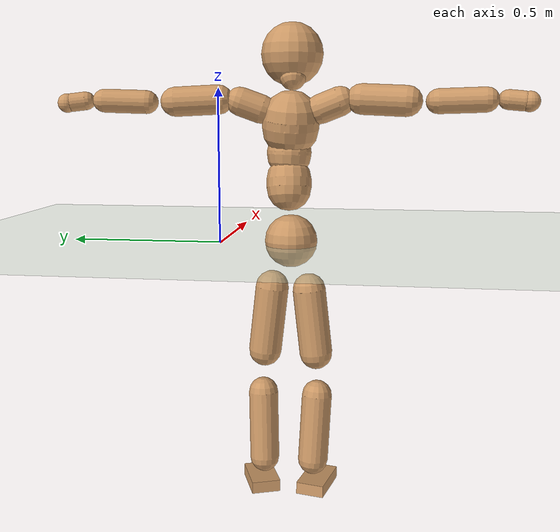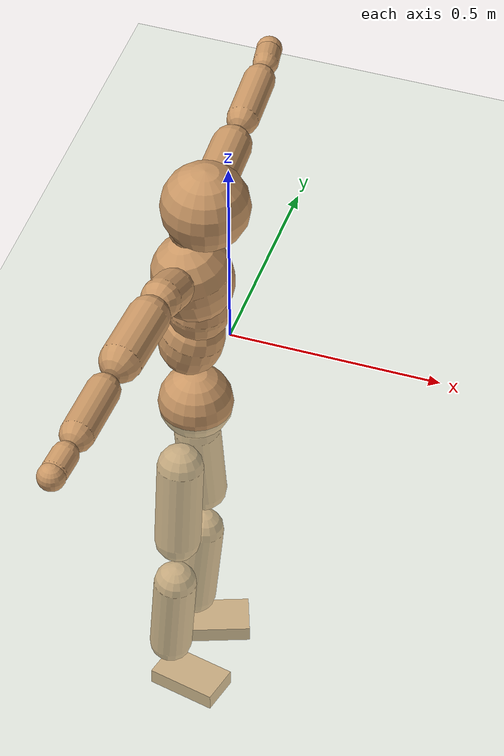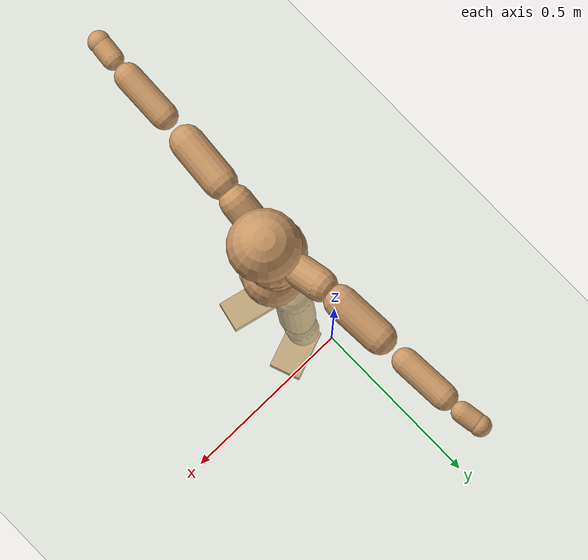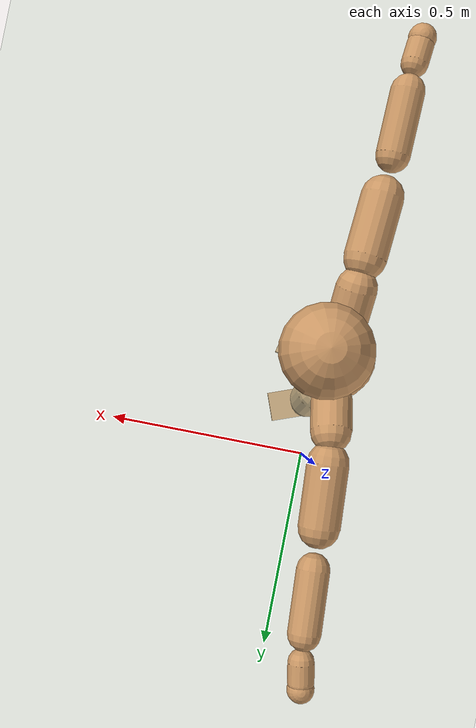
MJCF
<mujoco model="humanoid">
  <compiler coordinate="local" angle="radian"/>
  <default>
    <joint damping="0.0" armature="0.01" stiffness="0.0" limited="true"/>
    <geom conaffinity="1" condim="3" contype="7" margin="0.001" rgba="0.8 0.6 .4 1"/>
  </default>
  <asset>
    <texture type="skybox" builtin="gradient" rgb1=".4 .5 .6" rgb2="0 0 0" width="100" height="100"/>
    <texture builtin="flat" height="1278" mark="cross" markrgb="1 1 1" name="texgeom" random="0.01" rgb1="0.8 0.6 0.4" rgb2="0.8 0.6 0.4" type="cube" width="127"/>
    <texture builtin="checker" height="100" name="texplane" rgb1="0 0 0" rgb2="0.8 0.8 0.8" type="2d" width="100"/>
    <material name="MatPlane" reflectance="0.5" shininess="1" specular="1" texrepeat="60 60" texture="texplane"/>
    <material name="geom" texture="texgeom" texuniform="true"/>
  </asset>
  <worldbody>
    <light cutoff="100" diffuse="1 1 1" dir="-0 0 -1.3" directional="true" exponent="1" pos="0 0 1.3" specular=".1 .1 .1"/>
    <geom conaffinity="1" condim="3" name="floor" pos="0 0 0" rgba="0.8 0.9 0.8 1" size="100 100 .2" type="plane" material="MatPlane"/>
    <body name="Pelvis" pos="-0.0008 -0.2352 0.0116">
      <freejoint name="Pelvis"/>
      <geom type="sphere" contype="1" conaffinity="1" density="500" size="0.0857" pos="0.0000 0.0000 0.0000" name="Pelvis"/>
      <body name="L_Hip" pos="-0.0212 0.0512 -0.0784">
        <joint name="L_Hip_x" type="hinge" pos="0 0 0" axis="1 0 0" stiffness="800" damping="80" armature="0.02" range="-180.0000 180.0000"/>
        <joint name="L_Hip_y" type="hinge" pos="0 0 0" axis="0 1 0" stiffness="800" damping="80" armature="0.02" range="-180.0000 180.0000"/>
        <joint name="L_Hip_z" type="hinge" pos="0 0 0" axis="0 0 1" stiffness="800" damping="80" armature="0.02" range="-180.0000 180.0000"/>
        <geom type="capsule" contype="1" conaffinity="1" density="500" fromto="0.0016 0.0082 -0.0723 0.0064 0.0326 -0.2890" size="0.0542" name="L_Hip"/>
        <body name="L_Knee" pos="0.008 0.0408 -0.3613">
          <joint name="L_Knee_x" type="hinge" pos="0 0 0" axis="1 0 0" stiffness="800" damping="80" armature="0.02" range="-180.0000 180.0000"/>
          <joint name="L_Knee_y" type="hinge" pos="0 0 0" axis="0 1 0" stiffness="800" damping="80" armature="0.02" range="-180.0000 180.0000"/>
          <joint name="L_Knee_z" type="hinge" pos="0 0 0" axis="0 0 1" stiffness="800" damping="80" armature="0.02" range="-180.0000 180.0000"/>
          <geom type="capsule" contype="1" conaffinity="1" density="500" fromto="-0.0067 -0.0023 -0.0746 -0.0270 -0.0092 -0.2985" size="0.0489" name="L_Knee"/>
          <body name="L_Ankle" pos="-0.0337 -0.0115 -0.3732">
            <joint name="L_Ankle_x" type="hinge" pos="0 0 0" axis="1 0 0" stiffness="800" damping="80" armature="0.02" range="-180.0000 180.0000"/>
            <joint name="L_Ankle_y" type="hinge" pos="0 0 0" axis="0 1 0" stiffness="800" damping="80" armature="0.02" range="-180.0000 180.0000"/>
            <joint name="L_Ankle_z" type="hinge" pos="0 0 0" axis="0 0 1" stiffness="800" damping="80" armature="0.02" range="-180.0000 180.0000"/>
            <geom type="box" contype="1" conaffinity="1" density="500" pos="0.0546 0.0203 -0.0270" size="0.0764 0.0483 0.0196" quat="0.9842 0.0000 0.0000 0.1772" name="L_Ankle"/>
            <body name="L_Toe" pos="0.1091 0.0406 -0.054">
              <joint name="L_Toe_x" type="hinge" pos="0 0 0" axis="1 0 0" stiffness="500" damping="50" armature="0.02" range="-180.0000 180.0000"/>
              <joint name="L_Toe_y" type="hinge" pos="0 0 0" axis="0 1 0" stiffness="500" damping="50" armature="0.02" range="-180.0000 180.0000"/>
              <joint name="L_Toe_z" type="hinge" pos="0 0 0" axis="0 0 1" stiffness="500" damping="50" armature="0.02" range="-180.0000 180.0000"/>
              <geom type="box" contype="1" conaffinity="1" density="500" pos="0.0000 0.0000 0.0277" size="0.001 0.0023 0.001" quat="0.9833 0.0000 0.0000 0.1821" name="L_Toe"/>
            </body>
          </body>
        </body>
      </body>
      <body name="R_Hip" pos="-0.0176 -0.0537 -0.0866">
        <joint name="R_Hip_x" type="hinge" pos="0 0 0" axis="1 0 0" stiffness="800" damping="80" armature="0.02" range="-180.0000 180.0000"/>
        <joint name="R_Hip_y" type="hinge" pos="0 0 0" axis="0 1 0" stiffness="800" damping="80" armature="0.02" range="-180.0000 180.0000"/>
        <joint name="R_Hip_z" type="hinge" pos="0 0 0" axis="0 0 1" stiffness="800" damping="80" armature="0.02" range="-180.0000 180.0000"/>
        <geom type="capsule" contype="1" conaffinity="1" density="500" fromto="-0.0005 -0.0082 -0.0710 -0.0020 -0.0328 -0.2842" size="0.0538" name="R_Hip"/>
        <body name="R_Knee" pos="-0.0025 -0.041 -0.3552">
          <joint name="R_Knee_x" type="hinge" pos="0 0 0" axis="1 0 0" stiffness="800" damping="80" armature="0.02" range="-180.0000 180.0000"/>
          <joint name="R_Knee_y" type="hinge" pos="0 0 0" axis="0 1 0" stiffness="800" damping="80" armature="0.02" range="-180.0000 180.0000"/>
          <joint name="R_Knee_z" type="hinge" pos="0 0 0" axis="0 0 1" stiffness="800" damping="80" armature="0.02" range="-180.0000 180.0000"/>
          <geom type="capsule" contype="1" conaffinity="1" density="500" fromto="-0.0062 0.0033 -0.0735 -0.0246 0.0132 -0.2938" size="0.0497" name="R_Knee"/>
          <body name="R_Ankle" pos="-0.0308 0.0164 -0.3673">
            <joint name="R_Ankle_x" type="hinge" pos="0 0 0" axis="1 0 0" stiffness="800" damping="80" armature="0.02" range="-180.0000 180.0000"/>
            <joint name="R_Ankle_y" type="hinge" pos="0 0 0" axis="0 1 0" stiffness="800" damping="80" armature="0.02" range="-180.0000 180.0000"/>
            <joint name="R_Ankle_z" type="hinge" pos="0 0 0" axis="0 0 1" stiffness="800" damping="80" armature="0.02" range="-180.0000 180.0000"/>
            <geom type="box" contype="1" conaffinity="1" density="500" pos="0.0585 -0.0133 -0.0285" size="0.0816 0.0466 0.0201" quat="0.9938 0.0000 0.0000 -0.1111" name="R_Ankle"/>
            <body name="R_Toe" pos="0.117 -0.0265 -0.057">
              <joint name="R_Toe_x" type="hinge" pos="0 0 0" axis="1 0 0" stiffness="500" damping="50" armature="0.02" range="-180.0000 180.0000"/>
              <joint name="R_Toe_y" type="hinge" pos="0 0 0" axis="0 1 0" stiffness="500" damping="50" armature="0.02" range="-180.0000 180.0000"/>
              <joint name="R_Toe_z" type="hinge" pos="0 0 0" axis="0 0 1" stiffness="500" damping="50" armature="0.02" range="-180.0000 180.0000"/>
              <geom type="box" contype="1" conaffinity="1" density="500" pos="0.0000 0.0000 0.0304" size="0.0009 0.0023 0.0011" quat="0.9949 0.0000 0.0000 -0.1013" name="R_Toe"/>
            </body>
          </body>
        </body>
      </body>
      <body name="Torso" pos="-0.0245 0.0038 0.1176">
        <joint name="Torso_x" type="hinge" pos="0 0 0" axis="1 0 0" stiffness="1000" damping="100" armature="0.02" range="-180.0000 180.0000"/>
        <joint name="Torso_y" type="hinge" pos="0 0 0" axis="0 1 0" stiffness="1000" damping="100" armature="0.02" range="-180.0000 180.0000"/>
        <joint name="Torso_z" type="hinge" pos="0 0 0" axis="0 0 1" stiffness="1000" damping="100" armature="0.02" range="-180.0000 180.0000"/>
        <geom type="capsule" contype="1" conaffinity="1" density="500" fromto="0.0189 0.0030 0.0828 0.0126 0.0020 0.0552" size="0.0727" name="Torso"/>
        <body name="Spine" pos="0.0315 0.005 0.138">
          <joint name="Spine_x" type="hinge" pos="0 0 0" axis="1 0 0" stiffness="1000" damping="100" armature="0.02" range="-180.0000 180.0000"/>
          <joint name="Spine_y" type="hinge" pos="0 0 0" axis="0 1 0" stiffness="1000" damping="100" armature="0.02" range="-180.0000 180.0000"/>
          <joint name="Spine_z" type="hinge" pos="0 0 0" axis="0 0 1" stiffness="1000" damping="100" armature="0.02" range="-180.0000 180.0000"/>
          <geom type="capsule" contype="1" conaffinity="1" density="500" fromto="0.0015 -0.0012 0.0329 0.0010 -0.0008 0.0219" size="0.0713" name="Spine"/>
          <body name="Chest" pos="0.0026 -0.002 0.0548">
            <joint name="Chest_x" type="hinge" pos="0 0 0" axis="1 0 0" stiffness="1000" damping="100" armature="0.02" range="-180.0000 180.0000"/>
            <joint name="Chest_y" type="hinge" pos="0 0 0" axis="0 1 0" stiffness="1000" damping="100" armature="0.02" range="-180.0000 180.0000"/>
            <joint name="Chest_z" type="hinge" pos="0 0 0" axis="0 0 1" stiffness="1000" damping="100" armature="0.02" range="-180.0000 180.0000"/>
            <geom type="capsule" contype="1" conaffinity="1" density="500" fromto="-0.0144 -0.0054 0.0793 -0.0096 -0.0036 0.0528" size="0.091" name="Chest"/>
            <body name="Neck" pos="-0.0296 -0.0135 0.192">
              <joint name="Neck_x" type="hinge" pos="0 0 0" axis="1 0 0" stiffness="500" damping="50" armature="0.02" range="-180.0000 180.0000"/>
              <joint name="Neck_y" type="hinge" pos="0 0 0" axis="0 1 0" stiffness="500" damping="50" armature="0.02" range="-180.0000 180.0000"/>
              <joint name="Neck_z" type="hinge" pos="0 0 0" axis="0 0 1" stiffness="500" damping="50" armature="0.02" range="-180.0000 180.0000"/>
              <geom type="capsule" contype="1" conaffinity="1" density="500" fromto="0.0099 0.0017 0.0178 0.0395 0.0067 0.0714" size="0.042" name="Neck"/>
              <body name="Head" pos="0.0494 0.0084 0.0892">
                <joint name="Head_x" type="hinge" pos="0 0 0" axis="1 0 0" stiffness="500" damping="50" armature="0.02" range="-180.0000 180.0000"/>
                <joint name="Head_y" type="hinge" pos="0 0 0" axis="0 1 0" stiffness="500" damping="50" armature="0.02" range="-180.0000 180.0000"/>
                <joint name="Head_z" type="hinge" pos="0 0 0" axis="0 0 1" stiffness="500" damping="50" armature="0.02" range="-180.0000 180.0000"/>
                <geom type="sphere" contype="1" conaffinity="1" density="500" size="0.0991" pos="0.0000 0.0000 0.0000" name="Head"/>
              </body>
            </body>
            <body name="L_Thorax" pos="-0.0199 0.0646 0.1021">
              <joint name="L_Thorax_x" type="hinge" pos="0 0 0" axis="1 0 0" stiffness="500" damping="50" armature="0.02" range="-180.0000 180.0000"/>
              <joint name="L_Thorax_y" type="hinge" pos="0 0 0" axis="0 1 0" stiffness="500" damping="50" armature="0.02" range="-180.0000 180.0000"/>
              <joint name="L_Thorax_z" type="hinge" pos="0 0 0" axis="0 0 1" stiffness="500" damping="50" armature="0.02" range="-180.0000 180.0000"/>
              <geom type="capsule" contype="1" conaffinity="1" density="500" fromto="-0.0032 0.0222 0.0081 -0.0127 0.0888 0.0324" size="0.0456" name="L_Thorax"/>
              <body name="L_Shoulder" pos="-0.0159 0.1111 0.0405">
                <joint name="L_Shoulder_x" type="hinge" pos="0 0 0" axis="1 0 0" stiffness="500" damping="50" armature="0.02" range="-720.0000 720.0000"/>
                <joint name="L_Shoulder_y" type="hinge" pos="0 0 0" axis="0 1 0" stiffness="500" damping="50" armature="0.02" range="-720.0000 720.0000"/>
                <joint name="L_Shoulder_z" type="hinge" pos="0 0 0" axis="0 0 1" stiffness="500" damping="50" armature="0.02" range="-720.0000 720.0000"/>
                <geom type="capsule" contype="1" conaffinity="1" density="500" fromto="-0.0026 0.0461 -0.0023 -0.0105 0.1843 -0.0090" size="0.0465" name="L_Shoulder"/>
                <body name="L_Elbow" pos="-0.0131 0.2304 -0.0113">
                  <joint name="L_Elbow_x" type="hinge" pos="0 0 0" axis="1 0 0" stiffness="500" damping="50" armature="0.02" range="-720.0000 720.0000"/>
                  <joint name="L_Elbow_y" type="hinge" pos="0 0 0" axis="0 1 0" stiffness="500" damping="50" armature="0.02" range="-720.0000 720.0000"/>
                  <joint name="L_Elbow_z" type="hinge" pos="0 0 0" axis="0 0 1" stiffness="500" damping="50" armature="0.02" range="-720.0000 720.0000"/>
                  <geom type="capsule" contype="1" conaffinity="1" density="500" fromto="-0.0023 0.0456 0.0015 -0.0091 0.1825 0.0058" size="0.037" name="L_Elbow"/>
                  <body name="L_Wrist" pos="-0.0114 0.2281 0.0073">
                    <joint name="L_Wrist_x" type="hinge" pos="0 0 0" axis="1 0 0" stiffness="300" damping="30" armature="0.02" range="-180.0000 180.0000"/>
                    <joint name="L_Wrist_y" type="hinge" pos="0 0 0" axis="0 1 0" stiffness="300" damping="30" armature="0.02" range="-180.0000 180.0000"/>
                    <joint name="L_Wrist_z" type="hinge" pos="0 0 0" axis="0 0 1" stiffness="300" damping="30" armature="0.02" range="-180.0000 180.0000"/>
                    <geom type="capsule" contype="1" conaffinity="1" density="500" fromto="-0.0026 0.0146 -0.0018 -0.0104 0.0585 -0.0071" size="0.0292" name="L_Wrist"/>
                    <body name="L_Hand" pos="-0.013 0.0732 -0.0089">
                      <joint name="L_Hand_x" type="hinge" pos="0 0 0" axis="1 0 0" stiffness="300" damping="30" armature="0.02" range="-180.0000 180.0000"/>
                      <joint name="L_Hand_y" type="hinge" pos="0 0 0" axis="0 1 0" stiffness="300" damping="30" armature="0.02" range="-180.0000 180.0000"/>
                      <joint name="L_Hand_z" type="hinge" pos="0 0 0" axis="0 0 1" stiffness="300" damping="30" armature="0.02" range="-180.0000 180.0000"/>
                      <geom type="sphere" contype="1" conaffinity="1" density="500" size="0.0302" pos="0.0000 0.0000 0.0000" name="L_Hand"/>
                    </body>
                  </body>
                </body>
              </body>
            </body>
            <body name="R_Thorax" pos="-0.0226 -0.0782 0.1023">
              <joint name="R_Thorax_x" type="hinge" pos="0 0 0" axis="1 0 0" stiffness="500" damping="50" armature="0.02" range="-180.0000 180.0000"/>
              <joint name="R_Thorax_y" type="hinge" pos="0 0 0" axis="0 1 0" stiffness="500" damping="50" armature="0.02" range="-180.0000 180.0000"/>
              <joint name="R_Thorax_z" type="hinge" pos="0 0 0" axis="0 0 1" stiffness="500" damping="50" armature="0.02" range="-180.0000 180.0000"/>
              <geom type="capsule" contype="1" conaffinity="1" density="500" fromto="-0.0013 -0.0206 0.0082 -0.0050 -0.0825 0.0327" size="0.0462" name="R_Thorax"/>
              <body name="R_Shoulder" pos="-0.0063 -0.1032 0.0409">
                <joint name="R_Shoulder_x" type="hinge" pos="0 0 0" axis="1 0 0" stiffness="500" damping="50" armature="0.02" range="-720.0000 720.0000"/>
                <joint name="R_Shoulder_y" type="hinge" pos="0 0 0" axis="0 1 0" stiffness="500" damping="50" armature="0.02" range="-720.0000 720.0000"/>
                <joint name="R_Shoulder_z" type="hinge" pos="0 0 0" axis="0 0 1" stiffness="500" damping="50" armature="0.02" range="-720.0000 720.0000"/>
                <geom type="capsule" contype="1" conaffinity="1" density="500" fromto="-0.0040 -0.0462 -0.0021 -0.0160 -0.1848 -0.0085" size="0.0478" name="R_Shoulder"/>
                <body name="R_Elbow" pos="-0.0201 -0.231 -0.0106">
                  <joint name="R_Elbow_x" type="hinge" pos="0 0 0" axis="1 0 0" stiffness="500" damping="50" armature="0.02" range="-720.0000 720.0000"/>
                  <joint name="R_Elbow_y" type="hinge" pos="0 0 0" axis="0 1 0" stiffness="500" damping="50" armature="0.02" range="-720.0000 720.0000"/>
                  <joint name="R_Elbow_z" type="hinge" pos="0 0 0" axis="0 0 1" stiffness="500" damping="50" armature="0.02" range="-720.0000 720.0000"/>
                  <geom type="capsule" contype="1" conaffinity="1" density="500" fromto="-0.0015 -0.0473 0.0014 -0.0061 -0.1892 0.0058" size="0.0382" name="R_Elbow"/>
                  <body name="R_Wrist" pos="-0.0076 -0.2365 0.0072">
                    <joint name="R_Wrist_x" type="hinge" pos="0 0 0" axis="1 0 0" stiffness="300" damping="30" armature="0.02" range="-180.0000 180.0000"/>
                    <joint name="R_Wrist_y" type="hinge" pos="0 0 0" axis="0 1 0" stiffness="300" damping="30" armature="0.02" range="-180.0000 180.0000"/>
                    <joint name="R_Wrist_z" type="hinge" pos="0 0 0" axis="0 0 1" stiffness="300" damping="30" armature="0.02" range="-180.0000 180.0000"/>
                    <geom type="capsule" contype="1" conaffinity="1" density="500" fromto="-0.0017 -0.0153 -0.0014 -0.0068 -0.0611 -0.0057" size="0.0303" name="R_Wrist"/>
                    <body name="R_Hand" pos="-0.0085 -0.0764 -0.0071">
                      <joint name="R_Hand_x" type="hinge" pos="0 0 0" axis="1 0 0" stiffness="300" damping="30" armature="0.02" range="-180.0000 180.0000"/>
                      <joint name="R_Hand_y" type="hinge" pos="0 0 0" axis="0 1 0" stiffness="300" damping="30" armature="0.02" range="-180.0000 180.0000"/>
                      <joint name="R_Hand_z" type="hinge" pos="0 0 0" axis="0 0 1" stiffness="300" damping="30" armature="0.02" range="-180.0000 180.0000"/>
                      <geom type="sphere" contype="1" conaffinity="1" density="500" size="0.0312" pos="0.0000 0.0000 0.0000" name="R_Hand"/>
                    </body>
                  </body>
                </body>
              </body>
            </body>
          </body>
        </body>
      </body>
    </body>
  </worldbody>
  <actuator>
    <motor name="L_Hip_x" joint="L_Hip_x" gear="500"/>
    <motor name="L_Hip_y" joint="L_Hip_y" gear="500"/>
    <motor name="L_Hip_z" joint="L_Hip_z" gear="500"/>
    <motor name="L_Knee_x" joint="L_Knee_x" gear="500"/>
    <motor name="L_Knee_y" joint="L_Knee_y" gear="500"/>
    <motor name="L_Knee_z" joint="L_Knee_z" gear="500"/>
    <motor name="L_Ankle_x" joint="L_Ankle_x" gear="500"/>
    <motor name="L_Ankle_y" joint="L_Ankle_y" gear="500"/>
    <motor name="L_Ankle_z" joint="L_Ankle_z" gear="500"/>
    <motor name="L_Toe_x" joint="L_Toe_x" gear="500"/>
    <motor name="L_Toe_y" joint="L_Toe_y" gear="500"/>
    <motor name="L_Toe_z" joint="L_Toe_z" gear="500"/>
    <motor name="R_Hip_x" joint="R_Hip_x" gear="500"/>
    <motor name="R_Hip_y" joint="R_Hip_y" gear="500"/>
    <motor name="R_Hip_z" joint="R_Hip_z" gear="500"/>
    <motor name="R_Knee_x" joint="R_Knee_x" gear="500"/>
    <motor name="R_Knee_y" joint="R_Knee_y" gear="500"/>
    <motor name="R_Knee_z" joint="R_Knee_z" gear="500"/>
    <motor name="R_Ankle_x" joint="R_Ankle_x" gear="500"/>
    <motor name="R_Ankle_y" joint="R_Ankle_y" gear="500"/>
    <motor name="R_Ankle_z" joint="R_Ankle_z" gear="500"/>
    <motor name="R_Toe_x" joint="R_Toe_x" gear="500"/>
    <motor name="R_Toe_y" joint="R_Toe_y" gear="500"/>
    <motor name="R_Toe_z" joint="R_Toe_z" gear="500"/>
    <motor name="Torso_x" joint="Torso_x" gear="500"/>
    <motor name="Torso_y" joint="Torso_y" gear="500"/>
    <motor name="Torso_z" joint="Torso_z" gear="500"/>
    <motor name="Spine_x" joint="Spine_x" gear="500"/>
    <motor name="Spine_y" joint="Spine_y" gear="500"/>
    <motor name="Spine_z" joint="Spine_z" gear="500"/>
    <motor name="Chest_x" joint="Chest_x" gear="500"/>
    <motor name="Chest_y" joint="Chest_y" gear="500"/>
    <motor name="Chest_z" joint="Chest_z" gear="500"/>
    <motor name="Neck_x" joint="Neck_x" gear="500"/>
    <motor name="Neck_y" joint="Neck_y" gear="500"/>
    <motor name="Neck_z" joint="Neck_z" gear="500"/>
    <motor name="Head_x" joint="Head_x" gear="500"/>
    <motor name="Head_y" joint="Head_y" gear="500"/>
    <motor name="Head_z" joint="Head_z" gear="500"/>
    <motor name="L_Thorax_x" joint="L_Thorax_x" gear="500"/>
    <motor name="L_Thorax_y" joint="L_Thorax_y" gear="500"/>
    <motor name="L_Thorax_z" joint="L_Thorax_z" gear="500"/>
    <motor name="L_Shoulder_x" joint="L_Shoulder_x" gear="500"/>
    <motor name="L_Shoulder_y" joint="L_Shoulder_y" gear="500"/>
    <motor name="L_Shoulder_z" joint="L_Shoulder_z" gear="500"/>
    <motor name="L_Elbow_x" joint="L_Elbow_x" gear="500"/>
    <motor name="L_Elbow_y" joint="L_Elbow_y" gear="500"/>
    <motor name="L_Elbow_z" joint="L_Elbow_z" gear="500"/>
    <motor name="L_Wrist_x" joint="L_Wrist_x" gear="500"/>
    <motor name="L_Wrist_y" joint="L_Wrist_y" gear="500"/>
    <motor name="L_Wrist_z" joint="L_Wrist_z" gear="500"/>
    <motor name="L_Hand_x" joint="L_Hand_x" gear="500"/>
    <motor name="L_Hand_y" joint="L_Hand_y" gear="500"/>
    <motor name="L_Hand_z" joint="L_Hand_z" gear="500"/>
    <motor name="R_Thorax_x" joint="R_Thorax_x" gear="500"/>
    <motor name="R_Thorax_y" joint="R_Thorax_y" gear="500"/>
    <motor name="R_Thorax_z" joint="R_Thorax_z" gear="500"/>
    <motor name="R_Shoulder_x" joint="R_Shoulder_x" gear="500"/>
    <motor name="R_Shoulder_y" joint="R_Shoulder_y" gear="500"/>
    <motor name="R_Shoulder_z" joint="R_Shoulder_z" gear="500"/>
    <motor name="R_Elbow_x" joint="R_Elbow_x" gear="500"/>
    <motor name="R_Elbow_y" joint="R_Elbow_y" gear="500"/>
    <motor name="R_Elbow_z" joint="R_Elbow_z" gear="500"/>
    <motor name="R_Wrist_x" joint="R_Wrist_x" gear="500"/>
    <motor name="R_Wrist_y" joint="R_Wrist_y" gear="500"/>
    <motor name="R_Wrist_z" joint="R_Wrist_z" gear="500"/>
    <motor name="R_Hand_x" joint="R_Hand_x" gear="500"/>
    <motor name="R_Hand_y" joint="R_Hand_y" gear="500"/>
    <motor name="R_Hand_z" joint="R_Hand_z" gear="500"/>
  </actuator>
  <contact>
    <exclude body1="Torso" body2="Chest"/>
    <exclude body1="Head" body2="Chest"/>
    <exclude body1="R_Knee" body2="R_Toe"/>
    <exclude body1="R_Knee" body2="L_Ankle"/>
    <exclude body1="R_Knee" body2="L_Toe"/>
    <exclude body1="L_Knee" body2="L_Toe"/>
    <exclude body1="L_Knee" body2="R_Ankle"/>
    <exclude body1="L_Knee" body2="R_Toe"/>
    <exclude body1="L_Shoulder" body2="Chest"/>
    <exclude body1="R_Shoulder" body2="Chest"/>
  </contact>
  <sensor/>
  <size njmax="700" nconmax="700"/>
</mujoco>
